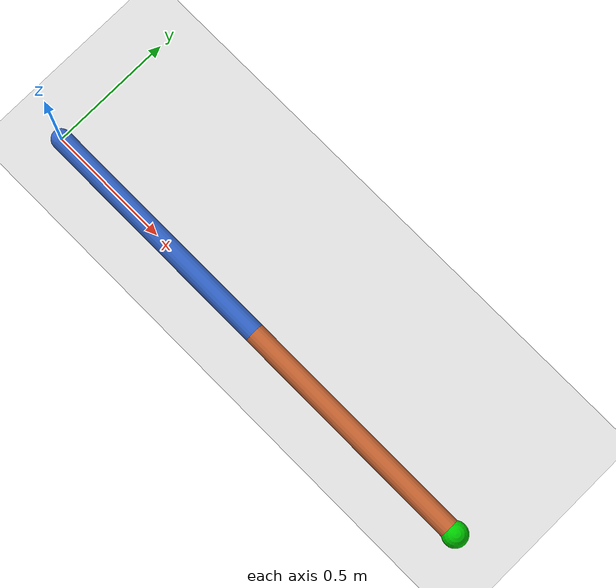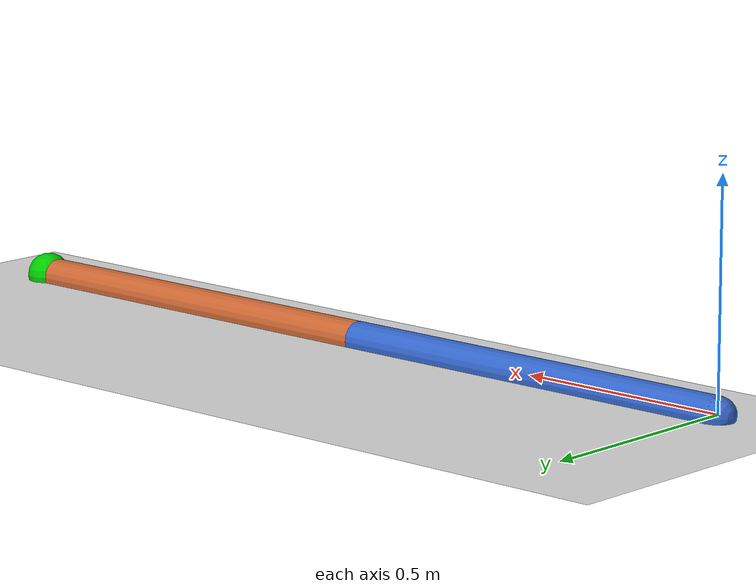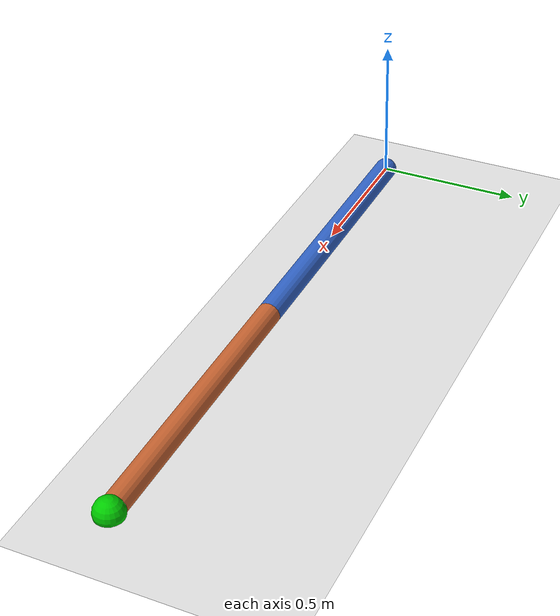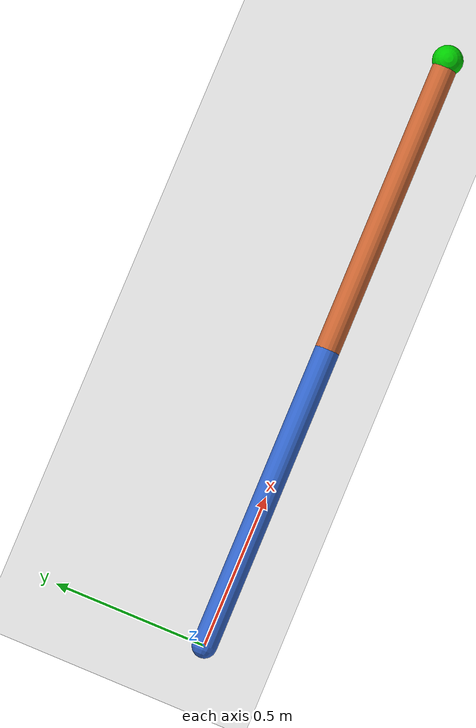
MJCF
<mujoco model="arm2">
  <compiler angle="radian" autolimits="true"/>
  <option gravity="0 -9.81 0" timestep="0.001" integrator="RK4"/>

  <default>
    <joint type="hinge" axis="0 0 1" damping="0"/>
    <geom type="capsule" size="0.04" rgba="0.2 0.4 0.8 1"/>
  </default>

  <worldbody>
    <light pos="0 0 3" dir="0 0 -1" diffuse="0.8 0.8 0.8"/>
    <geom name="floor" type="plane" pos="0 0 -0.01" size="5 5 0.1"
          rgba="0.9 0.9 0.9 1" contype="0" conaffinity="0"/>

    <!-- Link 1: rotates about the world origin -->
    <body name="link1" pos="0 0 0">
      <joint name="joint1"/>
      <inertial pos="0.5 0 0" mass="1" diaginertia="1e-4 0.0833333 0.0833333"/>
      <geom name="g_link1" fromto="0 0 0 1 0 0"/>

      <!-- Link 2: rotates about the elbow at the tip of link 1 -->
      <body name="link2" pos="1 0 0">
        <joint name="joint2"/>
        <inertial pos="0.5 0 0" mass="1" diaginertia="1e-4 0.0833333 0.0833333"/>
        <geom name="g_link2" fromto="0 0 0 1 0 0" rgba="0.8 0.4 0.2 1"/>
        <site name="ee" pos="1 0 0" size="0.05" rgba="0 0.8 0 1"/>
      </body>
    </body>
  </worldbody>

  <actuator>
    <!-- gear=1 => control input is joint torque directly, in N*m -->
    <motor name="m1" joint="joint1" gear="1" ctrlrange="-60 60"/>
    <motor name="m2" joint="joint2" gear="1" ctrlrange="-60 60"/>
  </actuator>
</mujoco>
